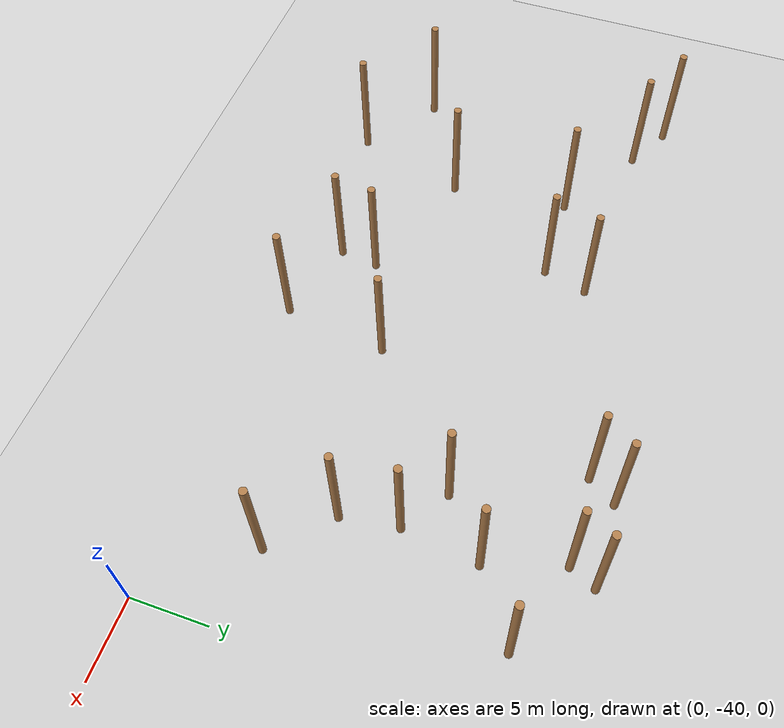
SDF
<sdf version="1.5">
 <world name="padure_tactica">
  <include><uri>model://sun</uri></include>
  <include><uri>model://ground_plane</uri></include>
  <model name="tree_24">
   <static>true</static>
   <pose>-29.28 -20.73 4.0 0 0 0</pose>
   <link name="link">
    <collision name="collision">
     <geometry><cylinder><radius>0.25</radius><length>8.0</length></cylinder></geometry>
    </collision>
    <visual name="visual">
     <geometry><cylinder><radius>0.25</radius><length>8.0</length></cylinder></geometry>
     <material>
      <script><uri>file://media/materials/scripts/gazebo.material</uri><name>Gazebo/Wood</name></script>
     </material>
    </visual>
   </link>
  </model>
  <model name="tree_101">
   <static>true</static>
   <pose>-5.09 -34.01 4.0 0 0 0</pose>
   <link name="link">
    <collision name="collision">
     <geometry><cylinder><radius>0.25</radius><length>8.0</length></cylinder></geometry>
    </collision>
    <visual name="visual">
     <geometry><cylinder><radius>0.25</radius><length>8.0</length></cylinder></geometry>
     <material>
      <script><uri>file://media/materials/scripts/gazebo.material</uri><name>Gazebo/Wood</name></script>
     </material>
    </visual>
   </link>
  </model>
  <model name="tree_115">
   <static>true</static>
   <pose>-30.06 -23.74 4.0 0 0 0</pose>
   <link name="link">
    <collision name="collision">
     <geometry><cylinder><radius>0.25</radius><length>8.0</length></cylinder></geometry>
    </collision>
    <visual name="visual">
     <geometry><cylinder><radius>0.25</radius><length>8.0</length></cylinder></geometry>
     <material>
      <script><uri>file://media/materials/scripts/gazebo.material</uri><name>Gazebo/Wood</name></script>
     </material>
    </visual>
   </link>
  </model>
  <model name="tree_185">
   <static>true</static>
   <pose>-21.28 -39.26 4.0 0 0 0</pose>
   <link name="link">
    <collision name="collision">
     <geometry><cylinder><radius>0.25</radius><length>8.0</length></cylinder></geometry>
    </collision>
    <visual name="visual">
     <geometry><cylinder><radius>0.25</radius><length>8.0</length></cylinder></geometry>
     <material>
      <script><uri>file://media/materials/scripts/gazebo.material</uri><name>Gazebo/Wood</name></script>
     </material>
    </visual>
   </link>
  </model>
  <model name="tree_193">
   <static>true</static>
   <pose>-8.93 -26.82 4.0 0 0 0</pose>
   <link name="link">
    <collision name="collision">
     <geometry><cylinder><radius>0.25</radius><length>8.0</length></cylinder></geometry>
    </collision>
    <visual name="visual">
     <geometry><cylinder><radius>0.25</radius><length>8.0</length></cylinder></geometry>
     <material>
      <script><uri>file://media/materials/scripts/gazebo.material</uri><name>Gazebo/Wood</name></script>
     </material>
    </visual>
   </link>
  </model>
  <model name="tree_209">
   <static>true</static>
   <pose>-9.07 -15.08 4.0 0 0 0</pose>
   <link name="link">
    <collision name="collision">
     <geometry><cylinder><radius>0.25</radius><length>8.0</length></cylinder></geometry>
    </collision>
    <visual name="visual">
     <geometry><cylinder><radius>0.25</radius><length>8.0</length></cylinder></geometry>
     <material>
      <script><uri>file://media/materials/scripts/gazebo.material</uri><name>Gazebo/Wood</name></script>
     </material>
    </visual>
   </link>
  </model>
  <model name="tree_215">
   <static>true</static>
   <pose>-45.66 -18.62 4.0 0 0 0</pose>
   <link name="link">
    <collision name="collision">
     <geometry><cylinder><radius>0.25</radius><length>8.0</length></cylinder></geometry>
    </collision>
    <visual name="visual">
     <geometry><cylinder><radius>0.25</radius><length>8.0</length></cylinder></geometry>
     <material>
      <script><uri>file://media/materials/scripts/gazebo.material</uri><name>Gazebo/Wood</name></script>
     </material>
    </visual>
   </link>
  </model>
  <model name="tree_225">
   <static>true</static>
   <pose>-15.68 -17.07 4.0 0 0 0</pose>
   <link name="link">
    <collision name="collision">
     <geometry><cylinder><radius>0.25</radius><length>8.0</length></cylinder></geometry>
    </collision>
    <visual name="visual">
     <geometry><cylinder><radius>0.25</radius><length>8.0</length></cylinder></geometry>
     <material>
      <script><uri>file://media/materials/scripts/gazebo.material</uri><name>Gazebo/Wood</name></script>
     </material>
    </visual>
   </link>
  </model>
  <model name="tree_256">
   <static>true</static>
   <pose>-8.28 -21.75 4.0 0 0 0</pose>
   <link name="link">
    <collision name="collision">
     <geometry><cylinder><radius>0.25</radius><length>8.0</length></cylinder></geometry>
    </collision>
    <visual name="visual">
     <geometry><cylinder><radius>0.25</radius><length>8.0</length></cylinder></geometry>
     <material>
      <script><uri>file://media/materials/scripts/gazebo.material</uri><name>Gazebo/Wood</name></script>
     </material>
    </visual>
   </link>
  </model>
  <model name="tree_395">
   <static>true</static>
   <pose>-3.99 -18.74 4.0 0 0 0</pose>
   <link name="link">
    <collision name="collision">
     <geometry><cylinder><radius>0.25</radius><length>8.0</length></cylinder></geometry>
    </collision>
    <visual name="visual">
     <geometry><cylinder><radius>0.25</radius><length>8.0</length></cylinder></geometry>
     <material>
      <script><uri>file://media/materials/scripts/gazebo.material</uri><name>Gazebo/Wood</name></script>
     </material>
    </visual>
   </link>
  </model>
  <model name="tree_422">
   <static>true</static>
   <pose>-36.27 -23.97 4.0 0 0 0</pose>
   <link name="link">
    <collision name="collision">
     <geometry><cylinder><radius>0.25</radius><length>8.0</length></cylinder></geometry>
    </collision>
    <visual name="visual">
     <geometry><cylinder><radius>0.25</radius><length>8.0</length></cylinder></geometry>
     <material>
      <script><uri>file://media/materials/scripts/gazebo.material</uri><name>Gazebo/Wood</name></script>
     </material>
    </visual>
   </link>
  </model>
  <model name="tree_425">
   <static>true</static>
   <pose>-37.67 -39.83 4.0 0 0 0</pose>
   <link name="link">
    <collision name="collision">
     <geometry><cylinder><radius>0.25</radius><length>8.0</length></cylinder></geometry>
    </collision>
    <visual name="visual">
     <geometry><cylinder><radius>0.25</radius><length>8.0</length></cylinder></geometry>
     <material>
      <script><uri>file://media/materials/scripts/gazebo.material</uri><name>Gazebo/Wood</name></script>
     </material>
    </visual>
   </link>
  </model>
  <model name="tree_445">
   <static>true</static>
   <pose>-9.87 -16.81 4.0 0 0 0</pose>
   <link name="link">
    <collision name="collision">
     <geometry><cylinder><radius>0.25</radius><length>8.0</length></cylinder></geometry>
    </collision>
    <visual name="visual">
     <geometry><cylinder><radius>0.25</radius><length>8.0</length></cylinder></geometry>
     <material>
      <script><uri>file://media/materials/scripts/gazebo.material</uri><name>Gazebo/Wood</name></script>
     </material>
    </visual>
   </link>
  </model>
  <model name="tree_459">
   <static>true</static>
   <pose>-20.30 -32.22 4.0 0 0 0</pose>
   <link name="link">
    <collision name="collision">
     <geometry><cylinder><radius>0.25</radius><length>8.0</length></cylinder></geometry>
    </collision>
    <visual name="visual">
     <geometry><cylinder><radius>0.25</radius><length>8.0</length></cylinder></geometry>
     <material>
      <script><uri>file://media/materials/scripts/gazebo.material</uri><name>Gazebo/Wood</name></script>
     </material>
    </visual>
   </link>
  </model>
  <model name="tree_588">
   <static>true</static>
   <pose>-42.77 -36.19 4.0 0 0 0</pose>
   <link name="link">
    <collision name="collision">
     <geometry><cylinder><radius>0.25</radius><length>8.0</length></cylinder></geometry>
    </collision>
    <visual name="visual">
     <geometry><cylinder><radius>0.25</radius><length>8.0</length></cylinder></geometry>
     <material>
      <script><uri>file://media/materials/scripts/gazebo.material</uri><name>Gazebo/Wood</name></script>
     </material>
    </visual>
   </link>
  </model>
  <model name="tree_625">
   <static>true</static>
   <pose>-27.12 -37.71 4.0 0 0 0</pose>
   <link name="link">
    <collision name="collision">
     <geometry><cylinder><radius>0.25</radius><length>8.0</length></cylinder></geometry>
    </collision>
    <visual name="visual">
     <geometry><cylinder><radius>0.25</radius><length>8.0</length></cylinder></geometry>
     <material>
      <script><uri>file://media/materials/scripts/gazebo.material</uri><name>Gazebo/Wood</name></script>
     </material>
    </visual>
   </link>
  </model>
  <model name="tree_688">
   <static>true</static>
   <pose>-42.44 -20.28 4.0 0 0 0</pose>
   <link name="link">
    <collision name="collision">
     <geometry><cylinder><radius>0.25</radius><length>8.0</length></cylinder></geometry>
    </collision>
    <visual name="visual">
     <geometry><cylinder><radius>0.25</radius><length>8.0</length></cylinder></geometry>
     <material>
      <script><uri>file://media/materials/scripts/gazebo.material</uri><name>Gazebo/Wood</name></script>
     </material>
    </visual>
   </link>
  </model>
  <model name="tree_793">
   <static>true</static>
   <pose>-14.50 -15.24 4.0 0 0 0</pose>
   <link name="link">
    <collision name="collision">
     <geometry><cylinder><radius>0.25</radius><length>8.0</length></cylinder></geometry>
    </collision>
    <visual name="visual">
     <geometry><cylinder><radius>0.25</radius><length>8.0</length></cylinder></geometry>
     <material>
      <script><uri>file://media/materials/scripts/gazebo.material</uri><name>Gazebo/Wood</name></script>
     </material>
    </visual>
   </link>
  </model>
  <model name="tree_921">
   <static>true</static>
   <pose>-35.37 -32.07 4.0 0 0 0</pose>
   <link name="link">
    <collision name="collision">
     <geometry><cylinder><radius>0.25</radius><length>8.0</length></cylinder></geometry>
    </collision>
    <visual name="visual">
     <geometry><cylinder><radius>0.25</radius><length>8.0</length></cylinder></geometry>
     <material>
      <script><uri>file://media/materials/scripts/gazebo.material</uri><name>Gazebo/Wood</name></script>
     </material>
    </visual>
   </link>
  </model>
  <model name="tree_1012">
   <static>true</static>
   <pose>-26.78 -35.08 4.0 0 0 0</pose>
   <link name="link">
    <collision name="collision">
     <geometry><cylinder><radius>0.25</radius><length>8.0</length></cylinder></geometry>
    </collision>
    <visual name="visual">
     <geometry><cylinder><radius>0.25</radius><length>8.0</length></cylinder></geometry>
     <material>
      <script><uri>file://media/materials/scripts/gazebo.material</uri><name>Gazebo/Wood</name></script>
     </material>
    </visual>
   </link>
  </model>
  <model name="tree_1018">
   <static>true</static>
   <pose>-8.39 -30.55 4.0 0 0 0</pose>
   <link name="link">
    <collision name="collision">
     <geometry><cylinder><radius>0.25</radius><length>8.0</length></cylinder></geometry>
    </collision>
    <visual name="visual">
     <geometry><cylinder><radius>0.25</radius><length>8.0</length></cylinder></geometry>
     <material>
      <script><uri>file://media/materials/scripts/gazebo.material</uri><name>Gazebo/Wood</name></script>
     </material>
    </visual>
   </link>
  </model>
  <model name="tree_1113">
   <static>true</static>
   <pose>-11.87 -24.79 4.0 0 0 0</pose>
   <link name="link">
    <collision name="collision">
     <geometry><cylinder><radius>0.25</radius><length>8.0</length></cylinder></geometry>
    </collision>
    <visual name="visual">
     <geometry><cylinder><radius>0.25</radius><length>8.0</length></cylinder></geometry>
     <material>
      <script><uri>file://media/materials/scripts/gazebo.material</uri><name>Gazebo/Wood</name></script>
     </material>
    </visual>
   </link>
  </model>
 </world>
</sdf>
